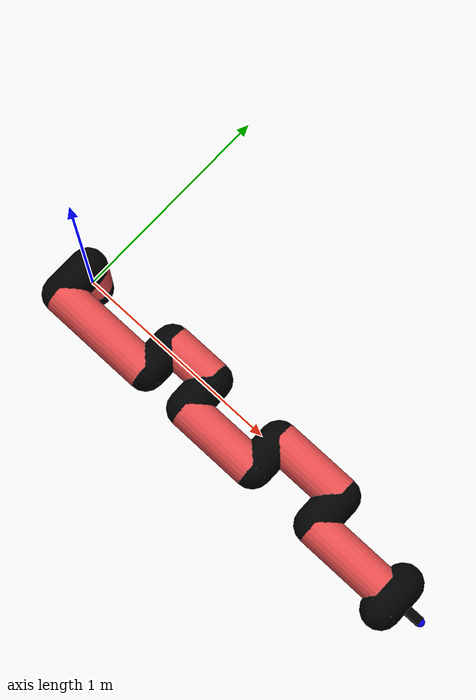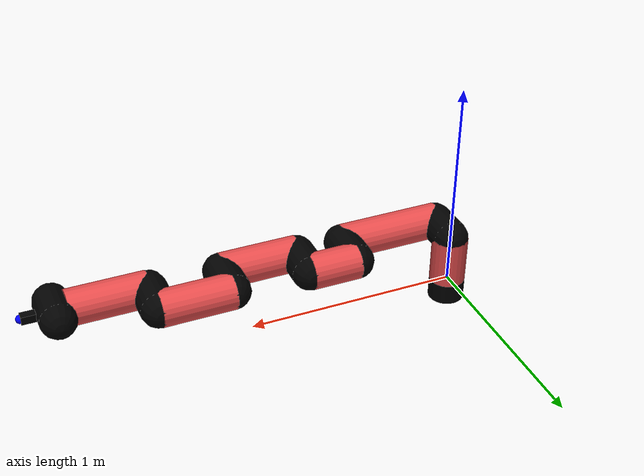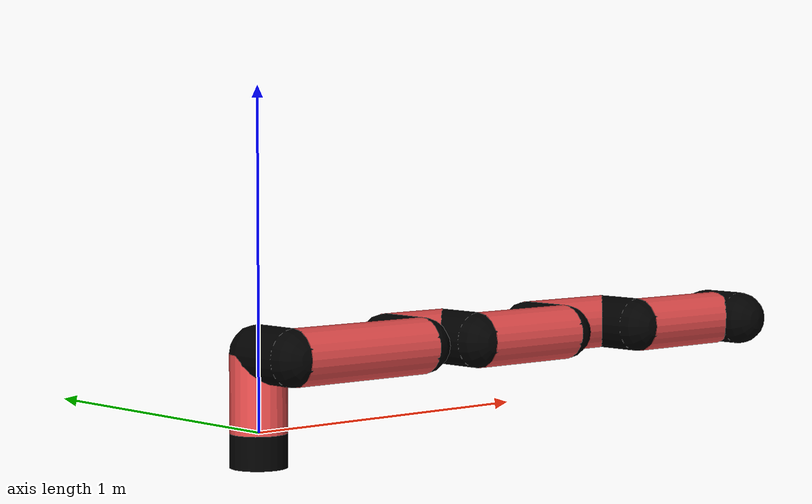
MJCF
<mujoco model="manipulator">
		<compiler angle="degree" coordinate="local" inertiafromgeom="auto" meshdir="meshes/"/>
		<option gravity="0 0 0" integrator="RK4" iterations="30" timestep="0.01"/>

		<default>
		<joint armature="1" limited="true" stiffness="10" damping="15" frictionloss="5.0"/>
		<geom conaffinity="1" condim="3" contype="1" friction=".5 .1 .1" margin="0.002"/>
		<motor ctrllimited="true"/>
		<position ctrllimited="true"/>
		</default>

		<asset>
		<texture builtin="gradient" height="100" rgb1="1.0 1.0 1.0" rgb2="1.0 1.0 1.0" type="skybox" width="100"/>
		<texture builtin="flat" height="32" name="arm_tex" rgb1="0.9 0.3 0.3" type="2d" width="32"/>
		<texture builtin="flat" height="32" name="gripper_tex" rgb1="0.0 0.0 0.0" type="cube" width="32"/>

		<material name="arm_mat" shininess="0.1" specular="0.1" texture="arm_tex"/>
		<material name="gripper_mat" shininess="1" specular="1" texture="gripper_tex"/>
		</asset>

		<worldbody>
		<light cutoff="45" diffuse=".8 .8 .8" dir="0 0.16 -1" directional="false" name="light" pos="0 -2.0 8.0" specular="0.3 0.3 0.3"/>

		<body name="base_link" pos="0 0 -0.1">
		<geom fromto="0 0 0 0 0 0.1" material="arm_mat" name="base_link" rgba="0.0 0.0 0.0 1" size="0.085" type="cylinder"/>
		</body>

		<body name="l1" pos="0 0 0">
<geom fromto="0 0 0 0 0 0.23" material="arm_mat" name="l1" rgba="0.9 0.3 0.3 1" size="0.085" type="cylinder"/>
<geom fromto="0 0 0.23 0 -0.16 0.23" material="arm_mat" name="l1_ex" rgba="0.0 0.0 0.0 1" size="0.085" type="capsule"/>
<joint axis="0 0 1" name="j1" pos="0 0 0" range="-90 90" damping="24.09" frictionloss="11.55"/>

<body name="l2" pos="0 -0.16 0.23">
<geom fromto="0 0 0 0.49 0 0" material="arm_mat" name="l2" rgba="0.9 0.3 0.3 1" size="0.085" type="cylinder"/>
<geom fromto="0.49 0 0 0.49 0.16 0" material="arm_mat" name="l2_ex" rgba="0.0 0.0 0.0 1" size="0.085" type="capsule"/>
<joint axis="0.0 1.0 0.0" name="j2" pos="0 0 0" range="-90 60" damping="32.32" frictionloss="9.64"/>

<body name="l3" pos="0.49 0.16 0">
<geom fromto="0 0 0 0.23 0 0" material="arm_mat" name="l3" rgba="0.9 0.3 0.3 1" size="0.085" type="cylinder"/>
<geom fromto="0.23 0 0 0.23 -0.16 0" material="arm_mat" name="l3_ex" rgba="0.0 0.0 0.0 1" size="0.085" type="capsule"/>
<joint axis="0.0 1.0 0.0" name="j3" pos="0 0 0" range="-30 60" damping="26.44" frictionloss="7.81"/>

<body name="l4" pos="0.23 -0.16 0">
<geom fromto="0 0 0 0.37 0 0" material="arm_mat" name="l4" rgba="0.9 0.3 0.3 1" size="0.085" type="cylinder"/>
<geom fromto="0.37 0 0 0.37 0.16 0" material="arm_mat" name="l4_ex" rgba="0.0 0.0 0.0 1" size="0.085" type="capsule"/>
<joint axis="0.0 1.0 0.0" name="j4" pos="0 0 0" range="-30 60" damping="22.93" frictionloss="10.22"/>

<body name="l5" pos="0.37 0.16 0">
<geom fromto="0 0 0 0.34 0 0" material="arm_mat" name="l5" rgba="0.9 0.3 0.3 1" size="0.085" type="cylinder"/>
<geom fromto="0.34 0 0 0.34 -0.16 0" material="arm_mat" name="l5_ex" rgba="0.0 0.0 0.0 1" size="0.085" type="capsule"/>
<joint axis="0.0 1.0 0.0" name="j5" pos="0 0 0" range="-30 60" damping="24.96" frictionloss="11.22"/>

<body name="l6" pos="0.34 -0.16 0">
<geom fromto="0 0 0 0.37 0 0" material="arm_mat" name="l6" rgba="0.9 0.3 0.3 1" size="0.085" type="cylinder"/>
<joint axis="0.0 1.0 0.0" name="j6" pos="0 0 0" range="-30 60" damping="23.69" frictionloss="10.12"/>

<body name="gripper" pos="0.37 0 0">
<geom fromto="0.05 -0.07 0 0.05 0.07 0" material="gripper_mat" name="gripper" rgba="0.0 0.0 0.0 1" size="0.085" type="capsule"/><joint axis="1 0 0" name="j7" pos="0 0 0" range="-90 90" damping="15" frictionloss="5.0"/><body name="finger" pos="0.1 0 0">
<geom fromto="0 0.0 0 0.1 0.0 0" material="gripper_mat" name="finger" rgba="0.0 0.0 0.0 1" size="0.020 0.06 0.06" type="box"/>
</body>
<site name="current" pos="0.2 0. 0.0" rgba="0. 0. 1.0 1" size="0.02" type="sphere"/>
</body>
</body>
</body>
</body>
</body>
</body>
</body>
</worldbody>
<actuator>
<motor ctrllimited="true" ctrlrange="-1.0 1.0" joint="j1" gear="71.76"/>
<motor ctrllimited="true" ctrlrange="-1.0 1.0" joint="j2" gear="94.67"/>
<motor ctrllimited="true" ctrlrange="-1.0 1.0" joint="j3" gear="70.37"/>
<motor ctrllimited="true" ctrlrange="-1.0 1.0" joint="j4" gear="68.73"/>
<motor ctrllimited="true" ctrlrange="-1.0 1.0" joint="j5" gear="80.78"/>
<motor ctrllimited="true" ctrlrange="-1.0 1.0" joint="j6" gear="96.42"/>
<motor ctrllimited="true" ctrlrange="-1.0 1.0" joint="j7" gear="80"/>
</actuator>
</mujoco>
